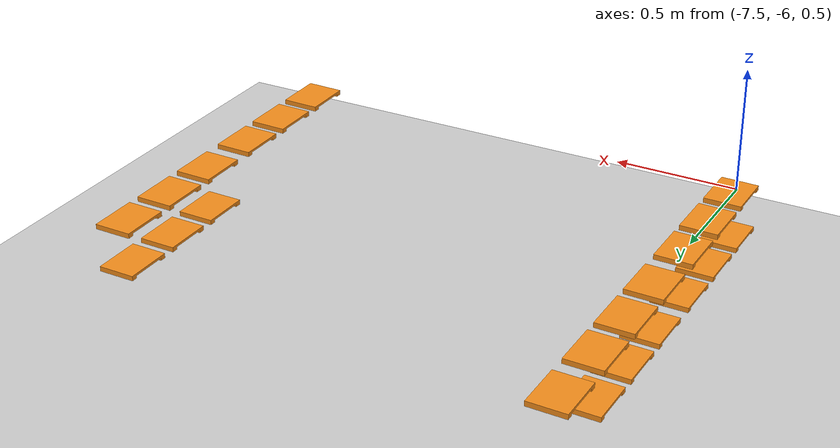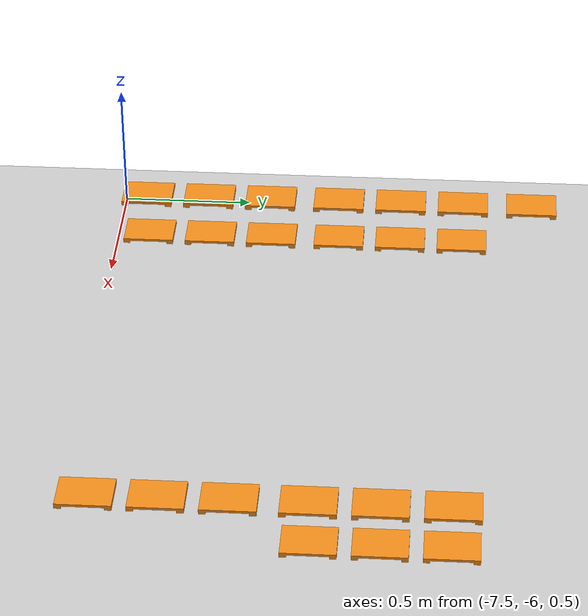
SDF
<sdf version="1.7">
 <world name="default">
  <model name="ground_plane">
   <static>1</static>
   <link name="link">
    <collision name="collision">
     <geometry><plane><normal>0 0 1</normal><size>100 100</size></plane></geometry>
     <surface>
      <contact><collide_bitmask>65535</collide_bitmask></contact>
      <friction><ode><mu>1</mu><mu2>1</mu2></ode></friction>
     </surface>
    </collision>
    <visual name="visual">
     <cast_shadows>0</cast_shadows>
     <geometry><plane><normal>0 0 1</normal><size>100 100</size></plane></geometry>
     <material>
      <script><uri>file://media/materials/scripts/gazebo.material</uri><name>Gazebo/Grey</name></script>
     </material>
    </visual>
   </link>
  </model>
  <model name="pallet_6">
   <pose>-7.50643 -4.3625 0.511017 3.5e-05 -0.012542 9e-06</pose>
   <link name="link">
    <inertial>
     <pose>0 0 0 0 -0 1.571</pose>
     <inertia>
      <ixx>0.00220983</ixx>
      <ixy>0</ixy>
      <ixz>0</ixz>
      <iyy>0.00128087</iyy>
      <iyz>0</iyz>
      <izz>0.00244903</izz>
     </inertia>
     <mass>0.01</mass>
    </inertial>
    <visual name="visual1">
     <cast_shadows>0</cast_shadows>
     <geometry><mesh><uri>model://pallet/meshes/pallet.stl</uri></mesh></geometry>
     <material>
      <script><uri>file://media/materials/scripts/gazebo.material</uri><name>Gazebo/Orange</name></script>
      <shader type="pixel"><normal_map>__default__</normal_map></shader>
      <emissive>0 0 0 1</emissive>
     </material>
     <pose>0 0 -0 0 -0 1.571</pose>
    </visual>
    <collision name="collision_0">
     <pose>0 0 0 0 -0 1.571</pose>
     <geometry><mesh><uri>model://pallet/meshes/pallet.stl</uri></mesh></geometry>
     <surface>
      <friction>
       <ode><mu>1</mu><mu2>1</mu2><fdir1>0 0 0</fdir1><slip1>0</slip1><slip2>0</slip2></ode>
       <torsional>
        <coefficient>1</coefficient>
        <patch_radius>0</patch_radius>
        <surface_radius>0</surface_radius>
        <use_patch_radius>1</use_patch_radius>
        <ode><slip>0</slip></ode>
       </torsional>
      </friction>
      <bounce><restitution_coefficient>0</restitution_coefficient><threshold>1e+06</threshold></bounce>
      <contact>
       <collide_without_contact>0</collide_without_contact>
       <collide_without_contact_bitmask>1</collide_without_contact_bitmask>
       <collide_bitmask>1</collide_bitmask>
       <ode>
        <soft_cfm>0</soft_cfm>
        <soft_erp>0.2</soft_erp>
        <kp>1e+13</kp>
        <kd>1</kd>
        <max_vel>0.01</max_vel>
        <min_depth>0</min_depth>
       </ode>
       <bullet>
        <split_impulse>1</split_impulse>
        <split_impulse_penetration_threshold>-0.01</split_impulse_penetration_threshold>
        <soft_cfm>0</soft_cfm>
        <soft_erp>0.2</soft_erp>
        <kp>1e+13</kp>
        <kd>1</kd>
       </bullet>
      </contact>
     </surface>
    </collision>
   </link>
   <static>0</static>
  </model>
  <model name="pallet_7">
   <pose>-7.50643 -4.637 0.511016 2.1e-05 -0.012542 7e-06</pose>
   <link name="link">
    <inertial>
     <pose>0 0 0 0 -0 1.571</pose>
     <inertia>
      <ixx>0.00220983</ixx>
      <ixy>0</ixy>
      <ixz>0</ixz>
      <iyy>0.00128087</iyy>
      <iyz>0</iyz>
      <izz>0.00244903</izz>
     </inertia>
     <mass>0.01</mass>
    </inertial>
    <visual name="visual1">
     <cast_shadows>0</cast_shadows>
     <geometry><mesh><uri>model://pallet/meshes/pallet.stl</uri></mesh></geometry>
     <material>
      <script><uri>file://media/materials/scripts/gazebo.material</uri><name>Gazebo/Orange</name></script>
      <shader type="pixel"><normal_map>__default__</normal_map></shader>
      <emissive>0 0 0 1</emissive>
     </material>
     <pose>0 0 -0 0 -0 1.571</pose>
    </visual>
    <collision name="collision_0">
     <pose>0 0 0 0 -0 1.571</pose>
     <geometry><mesh><uri>model://pallet/meshes/pallet.stl</uri></mesh></geometry>
     <surface>
      <friction>
       <ode><mu>1</mu><mu2>1</mu2><fdir1>0 0 0</fdir1><slip1>0</slip1><slip2>0</slip2></ode>
       <torsional>
        <coefficient>1</coefficient>
        <patch_radius>0</patch_radius>
        <surface_radius>0</surface_radius>
        <use_patch_radius>1</use_patch_radius>
        <ode><slip>0</slip></ode>
       </torsional>
      </friction>
      <bounce><restitution_coefficient>0</restitution_coefficient><threshold>1e+06</threshold></bounce>
      <contact>
       <collide_without_contact>0</collide_without_contact>
       <collide_without_contact_bitmask>1</collide_without_contact_bitmask>
       <collide_bitmask>1</collide_bitmask>
       <ode>
        <soft_cfm>0</soft_cfm>
        <soft_erp>0.2</soft_erp>
        <kp>1e+13</kp>
        <kd>1</kd>
        <max_vel>0.01</max_vel>
        <min_depth>0</min_depth>
       </ode>
       <bullet>
        <split_impulse>1</split_impulse>
        <split_impulse_penetration_threshold>-0.01</split_impulse_penetration_threshold>
        <soft_cfm>0</soft_cfm>
        <soft_erp>0.2</soft_erp>
        <kp>1e+13</kp>
        <kd>1</kd>
       </bullet>
      </contact>
     </surface>
    </collision>
   </link>
   <static>0</static>
  </model>
  <model name="pallet_8">
   <pose>-7.50642 -4.887 0.511015 2.9e-05 -0.012541 -1e-05</pose>
   <link name="link">
    <inertial>
     <pose>0 0 0 0 -0 1.571</pose>
     <inertia>
      <ixx>0.00220983</ixx>
      <ixy>0</ixy>
      <ixz>0</ixz>
      <iyy>0.00128087</iyy>
      <iyz>0</iyz>
      <izz>0.00244903</izz>
     </inertia>
     <mass>0.01</mass>
    </inertial>
    <visual name="visual1">
     <cast_shadows>0</cast_shadows>
     <geometry><mesh><uri>model://pallet/meshes/pallet.stl</uri></mesh></geometry>
     <material>
      <script><uri>file://media/materials/scripts/gazebo.material</uri><name>Gazebo/Orange</name></script>
      <shader type="pixel"><normal_map>__default__</normal_map></shader>
      <emissive>0 0 0 1</emissive>
     </material>
     <pose>0 0 -0 0 -0 1.571</pose>
    </visual>
    <collision name="collision_0">
     <pose>0 0 0 0 -0 1.571</pose>
     <geometry><mesh><uri>model://pallet/meshes/pallet.stl</uri></mesh></geometry>
     <surface>
      <friction>
       <ode><mu>1</mu><mu2>1</mu2><fdir1>0 0 0</fdir1><slip1>0</slip1><slip2>0</slip2></ode>
       <torsional>
        <coefficient>1</coefficient>
        <patch_radius>0</patch_radius>
        <surface_radius>0</surface_radius>
        <use_patch_radius>1</use_patch_radius>
        <ode><slip>0</slip></ode>
       </torsional>
      </friction>
      <bounce><restitution_coefficient>0</restitution_coefficient><threshold>1e+06</threshold></bounce>
      <contact>
       <collide_without_contact>0</collide_without_contact>
       <collide_without_contact_bitmask>1</collide_without_contact_bitmask>
       <collide_bitmask>1</collide_bitmask>
       <ode>
        <soft_cfm>0</soft_cfm>
        <soft_erp>0.2</soft_erp>
        <kp>1e+13</kp>
        <kd>1</kd>
        <max_vel>0.01</max_vel>
        <min_depth>0</min_depth>
       </ode>
       <bullet>
        <split_impulse>1</split_impulse>
        <split_impulse_penetration_threshold>-0.01</split_impulse_penetration_threshold>
        <soft_cfm>0</soft_cfm>
        <soft_erp>0.2</soft_erp>
        <kp>1e+13</kp>
        <kd>1</kd>
       </bullet>
      </contact>
     </surface>
    </collision>
   </link>
   <static>0</static>
  </model>
  <model name="pallet_9">
   <pose>-7.50642 -5.137 0.511016 1.2e-05 -0.012545 5e-06</pose>
   <link name="link">
    <inertial>
     <pose>0 0 0 0 -0 1.571</pose>
     <inertia>
      <ixx>0.00220983</ixx>
      <ixy>0</ixy>
      <ixz>0</ixz>
      <iyy>0.00128087</iyy>
      <iyz>0</iyz>
      <izz>0.00244903</izz>
     </inertia>
     <mass>0.01</mass>
    </inertial>
    <visual name="visual1">
     <cast_shadows>0</cast_shadows>
     <geometry><mesh><uri>model://pallet/meshes/pallet.stl</uri></mesh></geometry>
     <material>
      <script><uri>file://media/materials/scripts/gazebo.material</uri><name>Gazebo/Orange</name></script>
      <shader type="pixel"><normal_map>__default__</normal_map></shader>
      <emissive>0 0 0 1</emissive>
     </material>
     <pose>0 0 -0 0 -0 1.571</pose>
    </visual>
    <collision name="collision_0">
     <pose>0 0 0 0 -0 1.571</pose>
     <geometry><mesh><uri>model://pallet/meshes/pallet.stl</uri></mesh></geometry>
     <surface>
      <friction>
       <ode><mu>1</mu><mu2>1</mu2><fdir1>0 0 0</fdir1><slip1>0</slip1><slip2>0</slip2></ode>
       <torsional>
        <coefficient>1</coefficient>
        <patch_radius>0</patch_radius>
        <surface_radius>0</surface_radius>
        <use_patch_radius>1</use_patch_radius>
        <ode><slip>0</slip></ode>
       </torsional>
      </friction>
      <bounce><restitution_coefficient>0</restitution_coefficient><threshold>1e+06</threshold></bounce>
      <contact>
       <collide_without_contact>0</collide_without_contact>
       <collide_without_contact_bitmask>1</collide_without_contact_bitmask>
       <collide_bitmask>1</collide_bitmask>
       <ode>
        <soft_cfm>0</soft_cfm>
        <soft_erp>0.2</soft_erp>
        <kp>1e+13</kp>
        <kd>1</kd>
        <max_vel>0.01</max_vel>
        <min_depth>0</min_depth>
       </ode>
       <bullet>
        <split_impulse>1</split_impulse>
        <split_impulse_penetration_threshold>-0.01</split_impulse_penetration_threshold>
        <soft_cfm>0</soft_cfm>
        <soft_erp>0.2</soft_erp>
        <kp>1e+13</kp>
        <kd>1</kd>
       </bullet>
      </contact>
     </surface>
    </collision>
   </link>
   <static>0</static>
  </model>
  <model name="pallet_10">
   <pose>-7.50642 -5.6625 0.511013 2.2e-05 -0.012543 -1e-05</pose>
   <link name="link">
    <inertial>
     <pose>0 0 0 0 -0 1.571</pose>
     <inertia>
      <ixx>0.00220983</ixx>
      <ixy>0</ixy>
      <ixz>0</ixz>
      <iyy>0.00128087</iyy>
      <iyz>0</iyz>
      <izz>0.00244903</izz>
     </inertia>
     <mass>0.01</mass>
    </inertial>
    <visual name="visual1">
     <cast_shadows>0</cast_shadows>
     <geometry><mesh><uri>model://pallet/meshes/pallet.stl</uri></mesh></geometry>
     <material>
      <script><uri>file://media/materials/scripts/gazebo.material</uri><name>Gazebo/Orange</name></script>
      <shader type="pixel"><normal_map>__default__</normal_map></shader>
      <emissive>0 0 0 1</emissive>
     </material>
     <pose>0 0 -0 0 -0 1.571</pose>
    </visual>
    <collision name="collision_0">
     <pose>0 0 0 0 -0 1.571</pose>
     <geometry><mesh><uri>model://pallet/meshes/pallet.stl</uri></mesh></geometry>
     <surface>
      <friction>
       <ode><mu>1</mu><mu2>1</mu2><fdir1>0 0 0</fdir1><slip1>0</slip1><slip2>0</slip2></ode>
       <torsional>
        <coefficient>1</coefficient>
        <patch_radius>0</patch_radius>
        <surface_radius>0</surface_radius>
        <use_patch_radius>1</use_patch_radius>
        <ode><slip>0</slip></ode>
       </torsional>
      </friction>
      <bounce><restitution_coefficient>0</restitution_coefficient><threshold>1e+06</threshold></bounce>
      <contact>
       <collide_without_contact>0</collide_without_contact>
       <collide_without_contact_bitmask>1</collide_without_contact_bitmask>
       <collide_bitmask>1</collide_bitmask>
       <ode>
        <soft_cfm>0</soft_cfm>
        <soft_erp>0.2</soft_erp>
        <kp>1e+13</kp>
        <kd>1</kd>
        <max_vel>0.01</max_vel>
        <min_depth>0</min_depth>
       </ode>
       <bullet>
        <split_impulse>1</split_impulse>
        <split_impulse_penetration_threshold>-0.01</split_impulse_penetration_threshold>
        <soft_cfm>0</soft_cfm>
        <soft_erp>0.2</soft_erp>
        <kp>1e+13</kp>
        <kd>1</kd>
       </bullet>
      </contact>
     </surface>
    </collision>
   </link>
   <static>0</static>
  </model>
  <model name="pallet_11">
   <pose>-7.50642 -5.4125 0.511015 1.2e-05 -0.012542 2.4e-05</pose>
   <link name="link">
    <inertial>
     <pose>0 0 0 0 -0 1.571</pose>
     <inertia>
      <ixx>0.00220983</ixx>
      <ixy>0</ixy>
      <ixz>0</ixz>
      <iyy>0.00128087</iyy>
      <iyz>0</iyz>
      <izz>0.00244903</izz>
     </inertia>
     <mass>0.01</mass>
    </inertial>
    <visual name="visual1">
     <cast_shadows>0</cast_shadows>
     <geometry><mesh><uri>model://pallet/meshes/pallet.stl</uri></mesh></geometry>
     <material>
      <script><uri>file://media/materials/scripts/gazebo.material</uri><name>Gazebo/Orange</name></script>
      <shader type="pixel"><normal_map>__default__</normal_map></shader>
      <emissive>0 0 0 1</emissive>
     </material>
     <pose>0 0 -0 0 -0 1.571</pose>
    </visual>
    <collision name="collision_0">
     <pose>0 0 0 0 -0 1.571</pose>
     <geometry><mesh><uri>model://pallet/meshes/pallet.stl</uri></mesh></geometry>
     <surface>
      <friction>
       <ode><mu>1</mu><mu2>1</mu2><fdir1>0 0 0</fdir1><slip1>0</slip1><slip2>0</slip2></ode>
       <torsional>
        <coefficient>1</coefficient>
        <patch_radius>0</patch_radius>
        <surface_radius>0</surface_radius>
        <use_patch_radius>1</use_patch_radius>
        <ode><slip>0</slip></ode>
       </torsional>
      </friction>
      <bounce><restitution_coefficient>0</restitution_coefficient><threshold>1e+06</threshold></bounce>
      <contact>
       <collide_without_contact>0</collide_without_contact>
       <collide_without_contact_bitmask>1</collide_without_contact_bitmask>
       <collide_bitmask>1</collide_bitmask>
       <ode>
        <soft_cfm>0</soft_cfm>
        <soft_erp>0.2</soft_erp>
        <kp>1e+13</kp>
        <kd>1</kd>
        <max_vel>0.01</max_vel>
        <min_depth>0</min_depth>
       </ode>
       <bullet>
        <split_impulse>1</split_impulse>
        <split_impulse_penetration_threshold>-0.01</split_impulse_penetration_threshold>
        <soft_cfm>0</soft_cfm>
        <soft_erp>0.2</soft_erp>
        <kp>1e+13</kp>
        <kd>1</kd>
       </bullet>
      </contact>
     </surface>
    </collision>
   </link>
   <static>0</static>
  </model>
  <model name="pallet_12">
   <pose>-7.50641 -5.9125 0.511012 2e-05 -0.012542 -1e-06</pose>
   <link name="link">
    <inertial>
     <pose>0 0 0 0 -0 1.571</pose>
     <inertia>
      <ixx>0.00220983</ixx>
      <ixy>0</ixy>
      <ixz>0</ixz>
      <iyy>0.00128087</iyy>
      <iyz>0</iyz>
      <izz>0.00244903</izz>
     </inertia>
     <mass>0.01</mass>
    </inertial>
    <visual name="visual1">
     <cast_shadows>0</cast_shadows>
     <geometry><mesh><uri>model://pallet/meshes/pallet.stl</uri></mesh></geometry>
     <material>
      <script><uri>file://media/materials/scripts/gazebo.material</uri><name>Gazebo/Orange</name></script>
      <shader type="pixel"><normal_map>__default__</normal_map></shader>
      <emissive>0 0 0 1</emissive>
     </material>
     <pose>0 0 -0 0 -0 1.571</pose>
    </visual>
    <collision name="collision_0">
     <pose>0 0 0 0 -0 1.571</pose>
     <geometry><mesh><uri>model://pallet/meshes/pallet.stl</uri></mesh></geometry>
     <surface>
      <friction>
       <ode><mu>1</mu><mu2>1</mu2><fdir1>0 0 0</fdir1><slip1>0</slip1><slip2>0</slip2></ode>
       <torsional>
        <coefficient>1</coefficient>
        <patch_radius>0</patch_radius>
        <surface_radius>0</surface_radius>
        <use_patch_radius>1</use_patch_radius>
        <ode><slip>0</slip></ode>
       </torsional>
      </friction>
      <bounce><restitution_coefficient>0</restitution_coefficient><threshold>1e+06</threshold></bounce>
      <contact>
       <collide_without_contact>0</collide_without_contact>
       <collide_without_contact_bitmask>1</collide_without_contact_bitmask>
       <collide_bitmask>1</collide_bitmask>
       <ode>
        <soft_cfm>0</soft_cfm>
        <soft_erp>0.2</soft_erp>
        <kp>1e+13</kp>
        <kd>1</kd>
        <max_vel>0.01</max_vel>
        <min_depth>0</min_depth>
       </ode>
       <bullet>
        <split_impulse>1</split_impulse>
        <split_impulse_penetration_threshold>-0.01</split_impulse_penetration_threshold>
        <soft_cfm>0</soft_cfm>
        <soft_erp>0.2</soft_erp>
        <kp>1e+13</kp>
        <kd>1</kd>
       </bullet>
      </contact>
     </surface>
    </collision>
   </link>
   <static>0</static>
  </model>
  <model name="pallet_19">
   <pose>-7.50417 -4.887 0.331029 2.5e-05 -0.012541 1e-06</pose>
   <link name="link">
    <inertial>
     <pose>0 0 0 0 -0 1.571</pose>
     <inertia>
      <ixx>0.00220983</ixx>
      <ixy>0</ixy>
      <ixz>0</ixz>
      <iyy>0.00128087</iyy>
      <iyz>0</iyz>
      <izz>0.00244903</izz>
     </inertia>
     <mass>0.01</mass>
    </inertial>
    <visual name="visual1">
     <cast_shadows>0</cast_shadows>
     <geometry><mesh><uri>model://pallet/meshes/pallet.stl</uri></mesh></geometry>
     <material>
      <script><uri>file://media/materials/scripts/gazebo.material</uri><name>Gazebo/Orange</name></script>
      <shader type="pixel"><normal_map>__default__</normal_map></shader>
      <emissive>0 0 0 1</emissive>
     </material>
     <pose>0 0 -0 0 -0 1.571</pose>
    </visual>
    <collision name="collision_0">
     <pose>0 0 0 0 -0 1.571</pose>
     <geometry><mesh><uri>model://pallet/meshes/pallet.stl</uri></mesh></geometry>
     <surface>
      <friction>
       <ode><mu>1</mu><mu2>1</mu2><fdir1>0 0 0</fdir1><slip1>0</slip1><slip2>0</slip2></ode>
       <torsional>
        <coefficient>1</coefficient>
        <patch_radius>0</patch_radius>
        <surface_radius>0</surface_radius>
        <use_patch_radius>1</use_patch_radius>
        <ode><slip>0</slip></ode>
       </torsional>
      </friction>
      <bounce><restitution_coefficient>0</restitution_coefficient><threshold>1e+06</threshold></bounce>
      <contact>
       <collide_without_contact>0</collide_without_contact>
       <collide_without_contact_bitmask>1</collide_without_contact_bitmask>
       <collide_bitmask>1</collide_bitmask>
       <ode>
        <soft_cfm>0</soft_cfm>
        <soft_erp>0.2</soft_erp>
        <kp>1e+13</kp>
        <kd>1</kd>
        <max_vel>0.01</max_vel>
        <min_depth>0</min_depth>
       </ode>
       <bullet>
        <split_impulse>1</split_impulse>
        <split_impulse_penetration_threshold>-0.01</split_impulse_penetration_threshold>
        <soft_cfm>0</soft_cfm>
        <soft_erp>0.2</soft_erp>
        <kp>1e+13</kp>
        <kd>1</kd>
       </bullet>
      </contact>
     </surface>
    </collision>
   </link>
   <static>0</static>
  </model>
  <model name="pallet_20">
   <pose>-7.50417 -4.637 0.33103 2.6e-05 -0.012541 8e-06</pose>
   <link name="link">
    <inertial>
     <pose>0 0 0 0 -0 1.571</pose>
     <inertia>
      <ixx>0.00220983</ixx>
      <ixy>0</ixy>
      <ixz>0</ixz>
      <iyy>0.00128087</iyy>
      <iyz>0</iyz>
      <izz>0.00244903</izz>
     </inertia>
     <mass>0.01</mass>
    </inertial>
    <visual name="visual1">
     <cast_shadows>0</cast_shadows>
     <geometry><mesh><uri>model://pallet/meshes/pallet.stl</uri></mesh></geometry>
     <material>
      <script><uri>file://media/materials/scripts/gazebo.material</uri><name>Gazebo/Orange</name></script>
      <shader type="pixel"><normal_map>__default__</normal_map></shader>
      <emissive>0 0 0 1</emissive>
     </material>
     <pose>0 0 -0 0 -0 1.571</pose>
    </visual>
    <collision name="collision_0">
     <pose>0 0 0 0 -0 1.571</pose>
     <geometry><mesh><uri>model://pallet/meshes/pallet.stl</uri></mesh></geometry>
     <surface>
      <friction>
       <ode><mu>1</mu><mu2>1</mu2><fdir1>0 0 0</fdir1><slip1>0</slip1><slip2>0</slip2></ode>
       <torsional>
        <coefficient>1</coefficient>
        <patch_radius>0</patch_radius>
        <surface_radius>0</surface_radius>
        <use_patch_radius>1</use_patch_radius>
        <ode><slip>0</slip></ode>
       </torsional>
      </friction>
      <bounce><restitution_coefficient>0</restitution_coefficient><threshold>1e+06</threshold></bounce>
      <contact>
       <collide_without_contact>0</collide_without_contact>
       <collide_without_contact_bitmask>1</collide_without_contact_bitmask>
       <collide_bitmask>1</collide_bitmask>
       <ode>
        <soft_cfm>0</soft_cfm>
        <soft_erp>0.2</soft_erp>
        <kp>1e+13</kp>
        <kd>1</kd>
        <max_vel>0.01</max_vel>
        <min_depth>0</min_depth>
       </ode>
       <bullet>
        <split_impulse>1</split_impulse>
        <split_impulse_penetration_threshold>-0.01</split_impulse_penetration_threshold>
        <soft_cfm>0</soft_cfm>
        <soft_erp>0.2</soft_erp>
        <kp>1e+13</kp>
        <kd>1</kd>
       </bullet>
      </contact>
     </surface>
    </collision>
   </link>
   <static>0</static>
  </model>
  <model name="pallet_21">
   <pose>-7.50416 -5.137 0.331028 3.3e-05 -0.012541 7e-06</pose>
   <link name="link">
    <inertial>
     <pose>0 0 0 0 -0 1.571</pose>
     <inertia>
      <ixx>0.00220983</ixx>
      <ixy>0</ixy>
      <ixz>0</ixz>
      <iyy>0.00128087</iyy>
      <iyz>0</iyz>
      <izz>0.00244903</izz>
     </inertia>
     <mass>0.01</mass>
    </inertial>
    <visual name="visual1">
     <cast_shadows>0</cast_shadows>
     <geometry><mesh><uri>model://pallet/meshes/pallet.stl</uri></mesh></geometry>
     <material>
      <script><uri>file://media/materials/scripts/gazebo.material</uri><name>Gazebo/Orange</name></script>
      <shader type="pixel"><normal_map>__default__</normal_map></shader>
      <emissive>0 0 0 1</emissive>
     </material>
     <pose>0 0 -0 0 -0 1.571</pose>
    </visual>
    <collision name="collision_0">
     <pose>0 0 0 0 -0 1.571</pose>
     <geometry><mesh><uri>model://pallet/meshes/pallet.stl</uri></mesh></geometry>
     <surface>
      <friction>
       <ode><mu>1</mu><mu2>1</mu2><fdir1>0 0 0</fdir1><slip1>0</slip1><slip2>0</slip2></ode>
       <torsional>
        <coefficient>1</coefficient>
        <patch_radius>0</patch_radius>
        <surface_radius>0</surface_radius>
        <use_patch_radius>1</use_patch_radius>
        <ode><slip>0</slip></ode>
       </torsional>
      </friction>
      <bounce><restitution_coefficient>0</restitution_coefficient><threshold>1e+06</threshold></bounce>
      <contact>
       <collide_without_contact>0</collide_without_contact>
       <collide_without_contact_bitmask>1</collide_without_contact_bitmask>
       <collide_bitmask>1</collide_bitmask>
       <ode>
        <soft_cfm>0</soft_cfm>
        <soft_erp>0.2</soft_erp>
        <kp>1e+13</kp>
        <kd>1</kd>
        <max_vel>0.01</max_vel>
        <min_depth>0</min_depth>
       </ode>
       <bullet>
        <split_impulse>1</split_impulse>
        <split_impulse_penetration_threshold>-0.01</split_impulse_penetration_threshold>
        <soft_cfm>0</soft_cfm>
        <soft_erp>0.2</soft_erp>
        <kp>1e+13</kp>
        <kd>1</kd>
       </bullet>
      </contact>
     </surface>
    </collision>
   </link>
   <static>0</static>
  </model>
  <model name="pallet_22">
   <pose>-7.50416 -5.6625 0.331027 2.3e-05 -0.012541 0</pose>
   <link name="link">
    <inertial>
     <pose>0 0 0 0 -0 1.571</pose>
     <inertia>
      <ixx>0.00220983</ixx>
      <ixy>0</ixy>
      <ixz>0</ixz>
      <iyy>0.00128087</iyy>
      <iyz>0</iyz>
      <izz>0.00244903</izz>
     </inertia>
     <mass>0.01</mass>
    </inertial>
    <visual name="visual1">
     <cast_shadows>0</cast_shadows>
     <geometry><mesh><uri>model://pallet/meshes/pallet.stl</uri></mesh></geometry>
     <material>
      <script><uri>file://media/materials/scripts/gazebo.material</uri><name>Gazebo/Orange</name></script>
      <shader type="pixel"><normal_map>__default__</normal_map></shader>
      <emissive>0 0 0 1</emissive>
     </material>
     <pose>0 0 -0 0 -0 1.571</pose>
    </visual>
    <collision name="collision_0">
     <pose>0 0 0 0 -0 1.571</pose>
     <geometry><mesh><uri>model://pallet/meshes/pallet.stl</uri></mesh></geometry>
     <surface>
      <friction>
       <ode><mu>1</mu><mu2>1</mu2><fdir1>0 0 0</fdir1><slip1>0</slip1><slip2>0</slip2></ode>
       <torsional>
        <coefficient>1</coefficient>
        <patch_radius>0</patch_radius>
        <surface_radius>0</surface_radius>
        <use_patch_radius>1</use_patch_radius>
        <ode><slip>0</slip></ode>
       </torsional>
      </friction>
      <bounce><restitution_coefficient>0</restitution_coefficient><threshold>1e+06</threshold></bounce>
      <contact>
       <collide_without_contact>0</collide_without_contact>
       <collide_without_contact_bitmask>1</collide_without_contact_bitmask>
       <collide_bitmask>1</collide_bitmask>
       <ode>
        <soft_cfm>0</soft_cfm>
        <soft_erp>0.2</soft_erp>
        <kp>1e+13</kp>
        <kd>1</kd>
        <max_vel>0.01</max_vel>
        <min_depth>0</min_depth>
       </ode>
       <bullet>
        <split_impulse>1</split_impulse>
        <split_impulse_penetration_threshold>-0.01</split_impulse_penetration_threshold>
        <soft_cfm>0</soft_cfm>
        <soft_erp>0.2</soft_erp>
        <kp>1e+13</kp>
        <kd>1</kd>
       </bullet>
      </contact>
     </surface>
    </collision>
   </link>
   <static>0</static>
  </model>
  <model name="pallet_23">
   <pose>-7.50416 -5.4125 0.331028 2.9e-05 -0.012536 8e-06</pose>
   <link name="link">
    <inertial>
     <pose>0 0 0 0 -0 1.571</pose>
     <inertia>
      <ixx>0.00220983</ixx>
      <ixy>0</ixy>
      <ixz>0</ixz>
      <iyy>0.00128087</iyy>
      <iyz>0</iyz>
      <izz>0.00244903</izz>
     </inertia>
     <mass>0.01</mass>
    </inertial>
    <visual name="visual1">
     <cast_shadows>0</cast_shadows>
     <geometry><mesh><uri>model://pallet/meshes/pallet.stl</uri></mesh></geometry>
     <material>
      <script><uri>file://media/materials/scripts/gazebo.material</uri><name>Gazebo/Orange</name></script>
      <shader type="pixel"><normal_map>__default__</normal_map></shader>
      <emissive>0 0 0 1</emissive>
     </material>
     <pose>0 0 -0 0 -0 1.571</pose>
    </visual>
    <collision name="collision_0">
     <pose>0 0 0 0 -0 1.571</pose>
     <geometry><mesh><uri>model://pallet/meshes/pallet.stl</uri></mesh></geometry>
     <surface>
      <friction>
       <ode><mu>1</mu><mu2>1</mu2><fdir1>0 0 0</fdir1><slip1>0</slip1><slip2>0</slip2></ode>
       <torsional>
        <coefficient>1</coefficient>
        <patch_radius>0</patch_radius>
        <surface_radius>0</surface_radius>
        <use_patch_radius>1</use_patch_radius>
        <ode><slip>0</slip></ode>
       </torsional>
      </friction>
      <bounce><restitution_coefficient>0</restitution_coefficient><threshold>1e+06</threshold></bounce>
      <contact>
       <collide_without_contact>0</collide_without_contact>
       <collide_without_contact_bitmask>1</collide_without_contact_bitmask>
       <collide_bitmask>1</collide_bitmask>
       <ode>
        <soft_cfm>0</soft_cfm>
        <soft_erp>0.2</soft_erp>
        <kp>1e+13</kp>
        <kd>1</kd>
        <max_vel>0.01</max_vel>
        <min_depth>0</min_depth>
       </ode>
       <bullet>
        <split_impulse>1</split_impulse>
        <split_impulse_penetration_threshold>-0.01</split_impulse_penetration_threshold>
        <soft_cfm>0</soft_cfm>
        <soft_erp>0.2</soft_erp>
        <kp>1e+13</kp>
        <kd>1</kd>
       </bullet>
      </contact>
     </surface>
    </collision>
   </link>
   <static>0</static>
  </model>
  <model name="pallet_24">
   <pose>-7.50416 -5.9125 0.331026 2.8e-05 -0.012541 1e-05</pose>
   <link name="link">
    <inertial>
     <pose>0 0 0 0 -0 1.571</pose>
     <inertia>
      <ixx>0.00220983</ixx>
      <ixy>0</ixy>
      <ixz>0</ixz>
      <iyy>0.00128087</iyy>
      <iyz>0</iyz>
      <izz>0.00244903</izz>
     </inertia>
     <mass>0.01</mass>
    </inertial>
    <visual name="visual1">
     <cast_shadows>0</cast_shadows>
     <geometry><mesh><uri>model://pallet/meshes/pallet.stl</uri></mesh></geometry>
     <material>
      <script><uri>file://media/materials/scripts/gazebo.material</uri><name>Gazebo/Orange</name></script>
      <shader type="pixel"><normal_map>__default__</normal_map></shader>
      <emissive>0 0 0 1</emissive>
     </material>
     <pose>0 0 -0 0 -0 1.571</pose>
    </visual>
    <collision name="collision_0">
     <pose>0 0 0 0 -0 1.571</pose>
     <geometry><mesh><uri>model://pallet/meshes/pallet.stl</uri></mesh></geometry>
     <surface>
      <friction>
       <ode><mu>1</mu><mu2>1</mu2><fdir1>0 0 0</fdir1><slip1>0</slip1><slip2>0</slip2></ode>
       <torsional>
        <coefficient>1</coefficient>
        <patch_radius>0</patch_radius>
        <surface_radius>0</surface_radius>
        <use_patch_radius>1</use_patch_radius>
        <ode><slip>0</slip></ode>
       </torsional>
      </friction>
      <bounce><restitution_coefficient>0</restitution_coefficient><threshold>1e+06</threshold></bounce>
      <contact>
       <collide_without_contact>0</collide_without_contact>
       <collide_without_contact_bitmask>1</collide_without_contact_bitmask>
       <collide_bitmask>1</collide_bitmask>
       <ode>
        <soft_cfm>0</soft_cfm>
        <soft_erp>0.2</soft_erp>
        <kp>1e+13</kp>
        <kd>1</kd>
        <max_vel>0.01</max_vel>
        <min_depth>0</min_depth>
       </ode>
       <bullet>
        <split_impulse>1</split_impulse>
        <split_impulse_penetration_threshold>-0.01</split_impulse_penetration_threshold>
        <soft_cfm>0</soft_cfm>
        <soft_erp>0.2</soft_erp>
        <kp>1e+13</kp>
        <kd>1</kd>
       </bullet>
      </contact>
     </surface>
    </collision>
   </link>
   <static>0</static>
  </model>
  <model name="pallet_31">
   <pose>-5.61419 -4.887 0.331024 1.1e-05 -0.012626 -6e-06</pose>
   <link name="link">
    <inertial>
     <pose>0 0 0 0 -0 1.571</pose>
     <inertia>
      <ixx>0.00220983</ixx>
      <ixy>0</ixy>
      <ixz>0</ixz>
      <iyy>0.00128087</iyy>
      <iyz>0</iyz>
      <izz>0.00244903</izz>
     </inertia>
     <mass>0.01</mass>
    </inertial>
    <visual name="visual1">
     <cast_shadows>0</cast_shadows>
     <geometry><mesh><uri>model://pallet/meshes/pallet.stl</uri></mesh></geometry>
     <material>
      <script><uri>file://media/materials/scripts/gazebo.material</uri><name>Gazebo/Orange</name></script>
      <shader type="pixel"><normal_map>__default__</normal_map></shader>
      <emissive>0 0 0 1</emissive>
     </material>
     <pose>0 0 -0 0 -0 1.571</pose>
    </visual>
    <collision name="collision_0">
     <pose>0 0 0 0 -0 1.571</pose>
     <geometry><mesh><uri>model://pallet/meshes/pallet.stl</uri></mesh></geometry>
     <surface>
      <friction>
       <ode><mu>1</mu><mu2>1</mu2><fdir1>0 0 0</fdir1><slip1>0</slip1><slip2>0</slip2></ode>
       <torsional>
        <coefficient>1</coefficient>
        <patch_radius>0</patch_radius>
        <surface_radius>0</surface_radius>
        <use_patch_radius>1</use_patch_radius>
        <ode><slip>0</slip></ode>
       </torsional>
      </friction>
      <bounce><restitution_coefficient>0</restitution_coefficient><threshold>1e+06</threshold></bounce>
      <contact>
       <collide_without_contact>0</collide_without_contact>
       <collide_without_contact_bitmask>1</collide_without_contact_bitmask>
       <collide_bitmask>1</collide_bitmask>
       <ode>
        <soft_cfm>0</soft_cfm>
        <soft_erp>0.2</soft_erp>
        <kp>1e+13</kp>
        <kd>1</kd>
        <max_vel>0.01</max_vel>
        <min_depth>0</min_depth>
       </ode>
       <bullet>
        <split_impulse>1</split_impulse>
        <split_impulse_penetration_threshold>-0.01</split_impulse_penetration_threshold>
        <soft_cfm>0</soft_cfm>
        <soft_erp>0.2</soft_erp>
        <kp>1e+13</kp>
        <kd>1</kd>
       </bullet>
      </contact>
     </surface>
    </collision>
   </link>
   <static>0</static>
  </model>
  <model name="pallet_32">
   <pose>-5.6142 -4.637 0.331025 2.2e-05 -0.012625 4e-06</pose>
   <link name="link">
    <inertial>
     <pose>0 0 0 0 -0 1.571</pose>
     <inertia>
      <ixx>0.00220983</ixx>
      <ixy>0</ixy>
      <ixz>0</ixz>
      <iyy>0.00128087</iyy>
      <iyz>0</iyz>
      <izz>0.00244903</izz>
     </inertia>
     <mass>0.01</mass>
    </inertial>
    <visual name="visual1">
     <cast_shadows>0</cast_shadows>
     <geometry><mesh><uri>model://pallet/meshes/pallet.stl</uri></mesh></geometry>
     <material>
      <script><uri>file://media/materials/scripts/gazebo.material</uri><name>Gazebo/Orange</name></script>
      <shader type="pixel"><normal_map>__default__</normal_map></shader>
      <emissive>0 0 0 1</emissive>
     </material>
     <pose>0 0 -0 0 -0 1.571</pose>
    </visual>
    <collision name="collision_0">
     <pose>0 0 0 0 -0 1.571</pose>
     <geometry><mesh><uri>model://pallet/meshes/pallet.stl</uri></mesh></geometry>
     <surface>
      <friction>
       <ode><mu>1</mu><mu2>1</mu2><fdir1>0 0 0</fdir1><slip1>0</slip1><slip2>0</slip2></ode>
       <torsional>
        <coefficient>1</coefficient>
        <patch_radius>0</patch_radius>
        <surface_radius>0</surface_radius>
        <use_patch_radius>1</use_patch_radius>
        <ode><slip>0</slip></ode>
       </torsional>
      </friction>
      <bounce><restitution_coefficient>0</restitution_coefficient><threshold>1e+06</threshold></bounce>
      <contact>
       <collide_without_contact>0</collide_without_contact>
       <collide_without_contact_bitmask>1</collide_without_contact_bitmask>
       <collide_bitmask>1</collide_bitmask>
       <ode>
        <soft_cfm>0</soft_cfm>
        <soft_erp>0.2</soft_erp>
        <kp>1e+13</kp>
        <kd>1</kd>
        <max_vel>0.01</max_vel>
        <min_depth>0</min_depth>
       </ode>
       <bullet>
        <split_impulse>1</split_impulse>
        <split_impulse_penetration_threshold>-0.01</split_impulse_penetration_threshold>
        <soft_cfm>0</soft_cfm>
        <soft_erp>0.2</soft_erp>
        <kp>1e+13</kp>
        <kd>1</kd>
       </bullet>
      </contact>
     </surface>
    </collision>
   </link>
   <static>0</static>
  </model>
  <model name="pallet_33">
   <pose>-5.61419 -5.137 0.331022 2.9e-05 -0.012626 5e-06</pose>
   <link name="link">
    <inertial>
     <pose>0 0 0 0 -0 1.571</pose>
     <inertia>
      <ixx>0.00220983</ixx>
      <ixy>0</ixy>
      <ixz>0</ixz>
      <iyy>0.00128087</iyy>
      <iyz>0</iyz>
      <izz>0.00244903</izz>
     </inertia>
     <mass>0.01</mass>
    </inertial>
    <visual name="visual1">
     <cast_shadows>0</cast_shadows>
     <geometry><mesh><uri>model://pallet/meshes/pallet.stl</uri></mesh></geometry>
     <material>
      <script><uri>file://media/materials/scripts/gazebo.material</uri><name>Gazebo/Orange</name></script>
      <shader type="pixel"><normal_map>__default__</normal_map></shader>
      <emissive>0 0 0 1</emissive>
     </material>
     <pose>0 0 -0 0 -0 1.571</pose>
    </visual>
    <collision name="collision_0">
     <pose>0 0 0 0 -0 1.571</pose>
     <geometry><mesh><uri>model://pallet/meshes/pallet.stl</uri></mesh></geometry>
     <surface>
      <friction>
       <ode><mu>1</mu><mu2>1</mu2><fdir1>0 0 0</fdir1><slip1>0</slip1><slip2>0</slip2></ode>
       <torsional>
        <coefficient>1</coefficient>
        <patch_radius>0</patch_radius>
        <surface_radius>0</surface_radius>
        <use_patch_radius>1</use_patch_radius>
        <ode><slip>0</slip></ode>
       </torsional>
      </friction>
      <bounce><restitution_coefficient>0</restitution_coefficient><threshold>1e+06</threshold></bounce>
      <contact>
       <collide_without_contact>0</collide_without_contact>
       <collide_without_contact_bitmask>1</collide_without_contact_bitmask>
       <collide_bitmask>1</collide_bitmask>
       <ode>
        <soft_cfm>0</soft_cfm>
        <soft_erp>0.2</soft_erp>
        <kp>1e+13</kp>
        <kd>1</kd>
        <max_vel>0.01</max_vel>
        <min_depth>0</min_depth>
       </ode>
       <bullet>
        <split_impulse>1</split_impulse>
        <split_impulse_penetration_threshold>-0.01</split_impulse_penetration_threshold>
        <soft_cfm>0</soft_cfm>
        <soft_erp>0.2</soft_erp>
        <kp>1e+13</kp>
        <kd>1</kd>
       </bullet>
      </contact>
     </surface>
    </collision>
   </link>
   <static>0</static>
  </model>
  <model name="pallet_43">
   <pose>-5.61647 -4.887 0.511008 3.8e-05 -0.012626 -1e-05</pose>
   <link name="link">
    <inertial>
     <pose>0 0 0 0 -0 1.571</pose>
     <inertia>
      <ixx>0.00220983</ixx>
      <ixy>0</ixy>
      <ixz>0</ixz>
      <iyy>0.00128087</iyy>
      <iyz>0</iyz>
      <izz>0.00244903</izz>
     </inertia>
     <mass>0.01</mass>
    </inertial>
    <visual name="visual1">
     <cast_shadows>0</cast_shadows>
     <geometry><mesh><uri>model://pallet/meshes/pallet.stl</uri></mesh></geometry>
     <material>
      <script><uri>file://media/materials/scripts/gazebo.material</uri><name>Gazebo/Orange</name></script>
      <shader type="pixel"><normal_map>__default__</normal_map></shader>
      <emissive>0 0 0 1</emissive>
     </material>
     <pose>0 0 -0 0 -0 1.571</pose>
    </visual>
    <collision name="collision_0">
     <pose>0 0 0 0 -0 1.571</pose>
     <geometry><mesh><uri>model://pallet/meshes/pallet.stl</uri></mesh></geometry>
     <surface>
      <friction>
       <ode><mu>1</mu><mu2>1</mu2><fdir1>0 0 0</fdir1><slip1>0</slip1><slip2>0</slip2></ode>
       <torsional>
        <coefficient>1</coefficient>
        <patch_radius>0</patch_radius>
        <surface_radius>0</surface_radius>
        <use_patch_radius>1</use_patch_radius>
        <ode><slip>0</slip></ode>
       </torsional>
      </friction>
      <bounce><restitution_coefficient>0</restitution_coefficient><threshold>1e+06</threshold></bounce>
      <contact>
       <collide_without_contact>0</collide_without_contact>
       <collide_without_contact_bitmask>1</collide_without_contact_bitmask>
       <collide_bitmask>1</collide_bitmask>
       <ode>
        <soft_cfm>0</soft_cfm>
        <soft_erp>0.2</soft_erp>
        <kp>1e+13</kp>
        <kd>1</kd>
        <max_vel>0.01</max_vel>
        <min_depth>0</min_depth>
       </ode>
       <bullet>
        <split_impulse>1</split_impulse>
        <split_impulse_penetration_threshold>-0.01</split_impulse_penetration_threshold>
        <soft_cfm>0</soft_cfm>
        <soft_erp>0.2</soft_erp>
        <kp>1e+13</kp>
        <kd>1</kd>
       </bullet>
      </contact>
     </surface>
    </collision>
   </link>
   <static>0</static>
  </model>
  <model name="pallet_44">
   <pose>-5.61647 -4.637 0.511011 1.2e-05 -0.012624 7e-06</pose>
   <link name="link">
    <inertial>
     <pose>0 0 0 0 -0 1.571</pose>
     <inertia>
      <ixx>0.00220983</ixx>
      <ixy>0</ixy>
      <ixz>0</ixz>
      <iyy>0.00128087</iyy>
      <iyz>0</iyz>
      <izz>0.00244903</izz>
     </inertia>
     <mass>0.01</mass>
    </inertial>
    <visual name="visual1">
     <cast_shadows>0</cast_shadows>
     <geometry><mesh><uri>model://pallet/meshes/pallet.stl</uri></mesh></geometry>
     <material>
      <script><uri>file://media/materials/scripts/gazebo.material</uri><name>Gazebo/Orange</name></script>
      <shader type="pixel"><normal_map>__default__</normal_map></shader>
      <emissive>0 0 0 1</emissive>
     </material>
     <pose>0 0 -0 0 -0 1.571</pose>
    </visual>
    <collision name="collision_0">
     <pose>0 0 0 0 -0 1.571</pose>
     <geometry><mesh><uri>model://pallet/meshes/pallet.stl</uri></mesh></geometry>
     <surface>
      <friction>
       <ode><mu>1</mu><mu2>1</mu2><fdir1>0 0 0</fdir1><slip1>0</slip1><slip2>0</slip2></ode>
       <torsional>
        <coefficient>1</coefficient>
        <patch_radius>0</patch_radius>
        <surface_radius>0</surface_radius>
        <use_patch_radius>1</use_patch_radius>
        <ode><slip>0</slip></ode>
       </torsional>
      </friction>
      <bounce><restitution_coefficient>0</restitution_coefficient><threshold>1e+06</threshold></bounce>
      <contact>
       <collide_without_contact>0</collide_without_contact>
       <collide_without_contact_bitmask>1</collide_without_contact_bitmask>
       <collide_bitmask>1</collide_bitmask>
       <ode>
        <soft_cfm>0</soft_cfm>
        <soft_erp>0.2</soft_erp>
        <kp>1e+13</kp>
        <kd>1</kd>
        <max_vel>0.01</max_vel>
        <min_depth>0</min_depth>
       </ode>
       <bullet>
        <split_impulse>1</split_impulse>
        <split_impulse_penetration_threshold>-0.01</split_impulse_penetration_threshold>
        <soft_cfm>0</soft_cfm>
        <soft_erp>0.2</soft_erp>
        <kp>1e+13</kp>
        <kd>1</kd>
       </bullet>
      </contact>
     </surface>
    </collision>
   </link>
   <static>0</static>
  </model>
  <model name="pallet_45">
   <pose>-5.61646 -5.137 0.511008 1.9e-05 -0.012625 -2e-06</pose>
   <link name="link">
    <inertial>
     <pose>0 0 0 0 -0 1.571</pose>
     <inertia>
      <ixx>0.00220983</ixx>
      <ixy>0</ixy>
      <ixz>0</ixz>
      <iyy>0.00128087</iyy>
      <iyz>0</iyz>
      <izz>0.00244903</izz>
     </inertia>
     <mass>0.01</mass>
    </inertial>
    <visual name="visual1">
     <cast_shadows>0</cast_shadows>
     <geometry><mesh><uri>model://pallet/meshes/pallet.stl</uri></mesh></geometry>
     <material>
      <script><uri>file://media/materials/scripts/gazebo.material</uri><name>Gazebo/Orange</name></script>
      <shader type="pixel"><normal_map>__default__</normal_map></shader>
      <emissive>0 0 0 1</emissive>
     </material>
     <pose>0 0 -0 0 -0 1.571</pose>
    </visual>
    <collision name="collision_0">
     <pose>0 0 0 0 -0 1.571</pose>
     <geometry><mesh><uri>model://pallet/meshes/pallet.stl</uri></mesh></geometry>
     <surface>
      <friction>
       <ode><mu>1</mu><mu2>1</mu2><fdir1>0 0 0</fdir1><slip1>0</slip1><slip2>0</slip2></ode>
       <torsional>
        <coefficient>1</coefficient>
        <patch_radius>0</patch_radius>
        <surface_radius>0</surface_radius>
        <use_patch_radius>1</use_patch_radius>
        <ode><slip>0</slip></ode>
       </torsional>
      </friction>
      <bounce><restitution_coefficient>0</restitution_coefficient><threshold>1e+06</threshold></bounce>
      <contact>
       <collide_without_contact>0</collide_without_contact>
       <collide_without_contact_bitmask>1</collide_without_contact_bitmask>
       <collide_bitmask>1</collide_bitmask>
       <ode>
        <soft_cfm>0</soft_cfm>
        <soft_erp>0.2</soft_erp>
        <kp>1e+13</kp>
        <kd>1</kd>
        <max_vel>0.01</max_vel>
        <min_depth>0</min_depth>
       </ode>
       <bullet>
        <split_impulse>1</split_impulse>
        <split_impulse_penetration_threshold>-0.01</split_impulse_penetration_threshold>
        <soft_cfm>0</soft_cfm>
        <soft_erp>0.2</soft_erp>
        <kp>1e+13</kp>
        <kd>1</kd>
       </bullet>
      </contact>
     </surface>
    </collision>
   </link>
   <static>0</static>
  </model>
  <model name="pallet_46">
   <pose>-5.61646 -5.6625 0.511006 3.2e-05 -0.012626 -1.9e-05</pose>
   <link name="link">
    <inertial>
     <pose>0 0 0 0 -0 1.571</pose>
     <inertia>
      <ixx>0.00220983</ixx>
      <ixy>0</ixy>
      <ixz>0</ixz>
      <iyy>0.00128087</iyy>
      <iyz>0</iyz>
      <izz>0.00244903</izz>
     </inertia>
     <mass>0.01</mass>
    </inertial>
    <visual name="visual1">
     <cast_shadows>0</cast_shadows>
     <geometry><mesh><uri>model://pallet/meshes/pallet.stl</uri></mesh></geometry>
     <material>
      <script><uri>file://media/materials/scripts/gazebo.material</uri><name>Gazebo/Orange</name></script>
      <shader type="pixel"><normal_map>__default__</normal_map></shader>
      <emissive>0 0 0 1</emissive>
     </material>
     <pose>0 0 -0 0 -0 1.571</pose>
    </visual>
    <collision name="collision_0">
     <pose>0 0 0 0 -0 1.571</pose>
     <geometry><mesh><uri>model://pallet/meshes/pallet.stl</uri></mesh></geometry>
     <surface>
      <friction>
       <ode><mu>1</mu><mu2>1</mu2><fdir1>0 0 0</fdir1><slip1>0</slip1><slip2>0</slip2></ode>
       <torsional>
        <coefficient>1</coefficient>
        <patch_radius>0</patch_radius>
        <surface_radius>0</surface_radius>
        <use_patch_radius>1</use_patch_radius>
        <ode><slip>0</slip></ode>
       </torsional>
      </friction>
      <bounce><restitution_coefficient>0</restitution_coefficient><threshold>1e+06</threshold></bounce>
      <contact>
       <collide_without_contact>0</collide_without_contact>
       <collide_without_contact_bitmask>1</collide_without_contact_bitmask>
       <collide_bitmask>1</collide_bitmask>
       <ode>
        <soft_cfm>0</soft_cfm>
        <soft_erp>0.2</soft_erp>
        <kp>1e+13</kp>
        <kd>1</kd>
        <max_vel>0.01</max_vel>
        <min_depth>0</min_depth>
       </ode>
       <bullet>
        <split_impulse>1</split_impulse>
        <split_impulse_penetration_threshold>-0.01</split_impulse_penetration_threshold>
        <soft_cfm>0</soft_cfm>
        <soft_erp>0.2</soft_erp>
        <kp>1e+13</kp>
        <kd>1</kd>
       </bullet>
      </contact>
     </surface>
    </collision>
   </link>
   <static>0</static>
  </model>
  <model name="pallet_47">
   <pose>-5.61646 -5.4125 0.511009 1e-05 -0.012626 7e-06</pose>
   <link name="link">
    <inertial>
     <pose>0 0 0 0 -0 1.571</pose>
     <inertia>
      <ixx>0.00220983</ixx>
      <ixy>0</ixy>
      <ixz>0</ixz>
      <iyy>0.00128087</iyy>
      <iyz>0</iyz>
      <izz>0.00244903</izz>
     </inertia>
     <mass>0.01</mass>
    </inertial>
    <visual name="visual1">
     <cast_shadows>0</cast_shadows>
     <geometry><mesh><uri>model://pallet/meshes/pallet.stl</uri></mesh></geometry>
     <material>
      <script><uri>file://media/materials/scripts/gazebo.material</uri><name>Gazebo/Orange</name></script>
      <shader type="pixel"><normal_map>__default__</normal_map></shader>
      <emissive>0 0 0 1</emissive>
     </material>
     <pose>0 0 -0 0 -0 1.571</pose>
    </visual>
    <collision name="collision_0">
     <pose>0 0 0 0 -0 1.571</pose>
     <geometry><mesh><uri>model://pallet/meshes/pallet.stl</uri></mesh></geometry>
     <surface>
      <friction>
       <ode><mu>1</mu><mu2>1</mu2><fdir1>0 0 0</fdir1><slip1>0</slip1><slip2>0</slip2></ode>
       <torsional>
        <coefficient>1</coefficient>
        <patch_radius>0</patch_radius>
        <surface_radius>0</surface_radius>
        <use_patch_radius>1</use_patch_radius>
        <ode><slip>0</slip></ode>
       </torsional>
      </friction>
      <bounce><restitution_coefficient>0</restitution_coefficient><threshold>1e+06</threshold></bounce>
      <contact>
       <collide_without_contact>0</collide_without_contact>
       <collide_without_contact_bitmask>1</collide_without_contact_bitmask>
       <collide_bitmask>1</collide_bitmask>
       <ode>
        <soft_cfm>0</soft_cfm>
        <soft_erp>0.2</soft_erp>
        <kp>1e+13</kp>
        <kd>1</kd>
        <max_vel>0.01</max_vel>
        <min_depth>0</min_depth>
       </ode>
       <bullet>
        <split_impulse>1</split_impulse>
        <split_impulse_penetration_threshold>-0.01</split_impulse_penetration_threshold>
        <soft_cfm>0</soft_cfm>
        <soft_erp>0.2</soft_erp>
        <kp>1e+13</kp>
        <kd>1</kd>
       </bullet>
      </contact>
     </surface>
    </collision>
   </link>
   <static>0</static>
  </model>
  <model name="pallet_48">
   <pose>-5.61646 -5.9125 0.511005 3.9e-05 -0.012626 7e-06</pose>
   <link name="link">
    <inertial>
     <pose>0 0 0 0 -0 1.571</pose>
     <inertia>
      <ixx>0.00220983</ixx>
      <ixy>0</ixy>
      <ixz>0</ixz>
      <iyy>0.00128087</iyy>
      <iyz>0</iyz>
      <izz>0.00244903</izz>
     </inertia>
     <mass>0.01</mass>
    </inertial>
    <visual name="visual1">
     <cast_shadows>0</cast_shadows>
     <geometry><mesh><uri>model://pallet/meshes/pallet.stl</uri></mesh></geometry>
     <material>
      <script><uri>file://media/materials/scripts/gazebo.material</uri><name>Gazebo/Orange</name></script>
      <shader type="pixel"><normal_map>__default__</normal_map></shader>
      <emissive>0 0 0 1</emissive>
     </material>
     <pose>0 0 -0 0 -0 1.571</pose>
    </visual>
    <collision name="collision_0">
     <pose>0 0 0 0 -0 1.571</pose>
     <geometry><mesh><uri>model://pallet/meshes/pallet.stl</uri></mesh></geometry>
     <surface>
      <friction>
       <ode><mu>1</mu><mu2>1</mu2><fdir1>0 0 0</fdir1><slip1>0</slip1><slip2>0</slip2></ode>
       <torsional>
        <coefficient>1</coefficient>
        <patch_radius>0</patch_radius>
        <surface_radius>0</surface_radius>
        <use_patch_radius>1</use_patch_radius>
        <ode><slip>0</slip></ode>
       </torsional>
      </friction>
      <bounce><restitution_coefficient>0</restitution_coefficient><threshold>1e+06</threshold></bounce>
      <contact>
       <collide_without_contact>0</collide_without_contact>
       <collide_without_contact_bitmask>1</collide_without_contact_bitmask>
       <collide_bitmask>1</collide_bitmask>
       <ode>
        <soft_cfm>0</soft_cfm>
        <soft_erp>0.2</soft_erp>
        <kp>1e+13</kp>
        <kd>1</kd>
        <max_vel>0.01</max_vel>
        <min_depth>0</min_depth>
       </ode>
       <bullet>
        <split_impulse>1</split_impulse>
        <split_impulse_penetration_threshold>-0.01</split_impulse_penetration_threshold>
        <soft_cfm>0</soft_cfm>
        <soft_erp>0.2</soft_erp>
        <kp>1e+13</kp>
        <kd>1</kd>
       </bullet>
      </contact>
     </surface>
    </collision>
   </link>
   <static>0</static>
  </model>
 </world>
</sdf>
